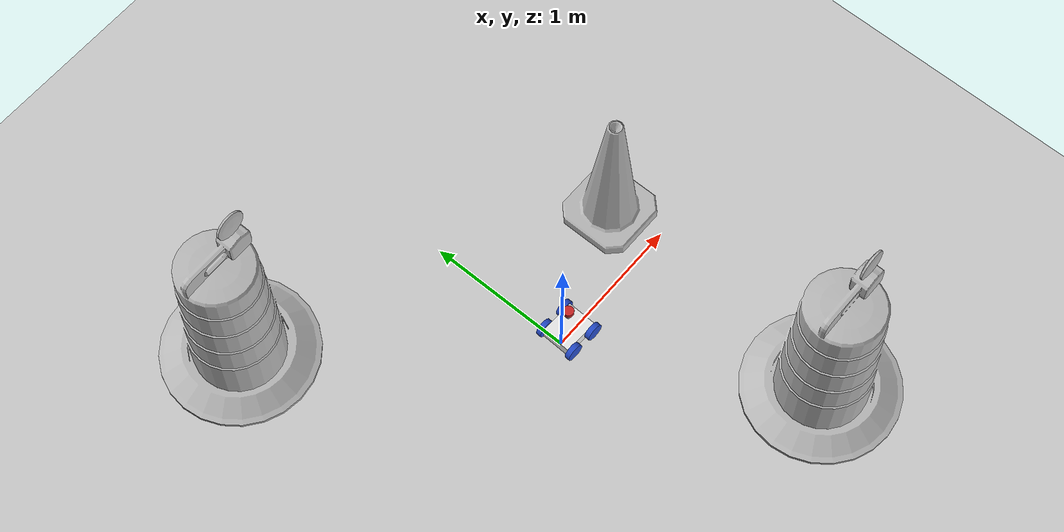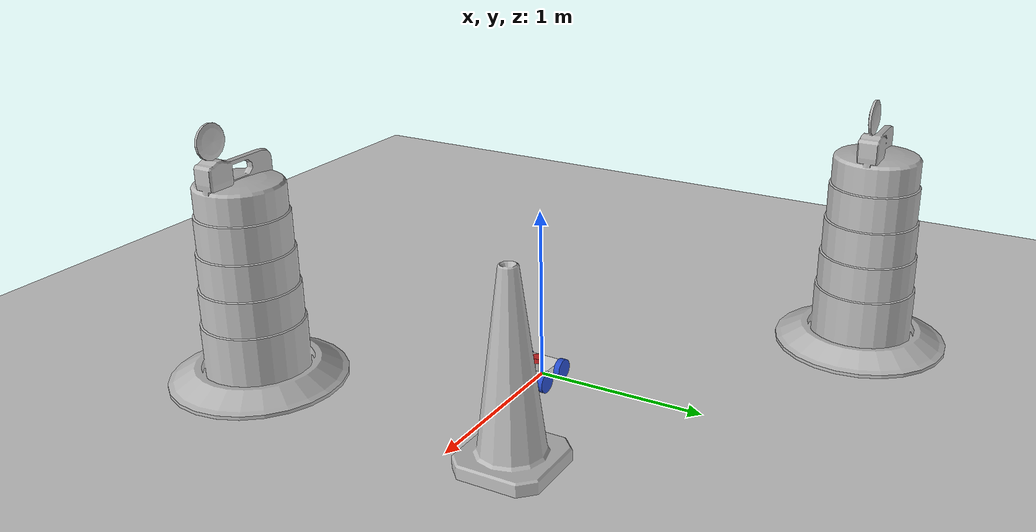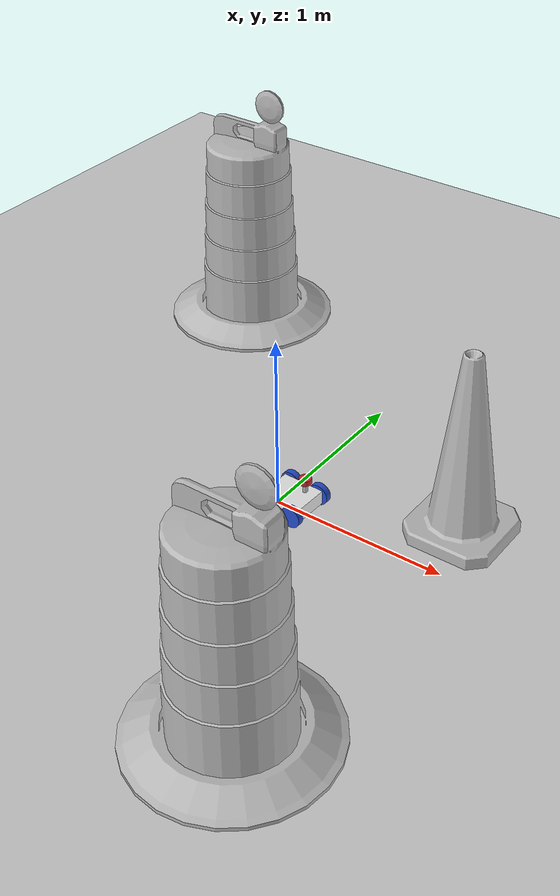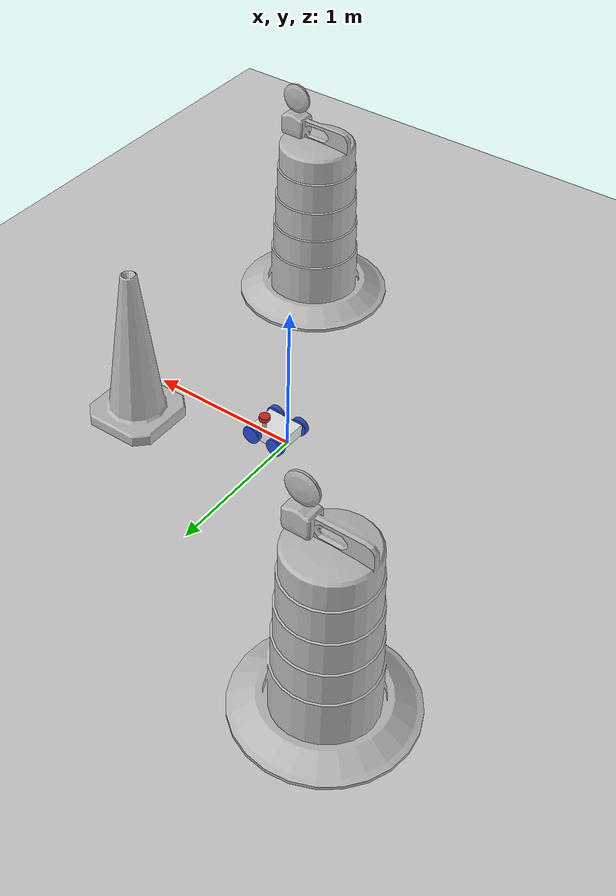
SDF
<sdf version="1.7">
 <world name="default">
  <light name="sun" type="directional">
   <pose>0 0 10 0 -0 0</pose>
   <diffuse>0.8 0.8 0.8 1</diffuse>
   <specular>0.2 0.2 0.2 1</specular>
   <attenuation>
    <range>1000</range>
    <constant>0.9</constant>
    <linear>0.01</linear>
    <quadratic>0.001</quadratic>
   </attenuation>
   <direction>-0.5 0.1 -0.9</direction>
   <spot><inner_angle>0</inner_angle><outer_angle>0</outer_angle><falloff>0</falloff></spot>
  </light>
  <model name="ground_plane">
   <static>1</static>
   <link name="link">
    <collision name="collision">
     <geometry><plane><normal>0 0 1</normal><size>100 100</size></plane></geometry>
     <surface>
      <contact><collide_bitmask>65535</collide_bitmask></contact>
      <friction><ode><mu>100</mu><mu2>50</mu2></ode></friction>
     </surface>
    </collision>
    <visual name="visual">
     <cast_shadows>0</cast_shadows>
     <geometry><plane><normal>0 0 1</normal><size>100 100</size></plane></geometry>
     <material>
      <script><uri>file://media/materials/scripts/gazebo.material</uri><name>Gazebo/Grey</name></script>
     </material>
    </visual>
   </link>
  </model>
  <gravity>0 0 -9.8</gravity>
  <magnetic_field>6e-06 2.3e-05 -4.2e-05</magnetic_field>
  <atmosphere type="adiabatic"/>
  <physics type="ode">
   <max_step_size>0.001</max_step_size>
   <real_time_factor>1</real_time_factor>
   <real_time_update_rate>1000</real_time_update_rate>
  </physics>
  <scene><ambient>0.4 0.4 0.4 1</ambient><background>0.7 0.7 0.7 1</background><shadows>1</shadows></scene>
  <audio><device>default</device></audio>
  <spherical_coordinates>
   <surface_model>EARTH_WGS84</surface_model>
   <latitude_deg>0</latitude_deg>
   <longitude_deg>0</longitude_deg>
   <elevation>0</elevation>
   <heading_deg>0</heading_deg>
  </spherical_coordinates>
  <model name="my_bot">
   <link name="base_link">
    <inertial>
     <pose>0.018182 0.018182 0.092598 0 -0 0</pose>
     <mass>1.1</mass>
     <inertia>
      <ixx>0.00573095</ixx>
      <ixy>-0.000636364</ixy>
      <ixz>-0.00112955</ixz>
      <iyy>0.00689996</iyy>
      <iyz>-0.00112955</iyz>
      <izz>0.00737144</izz>
     </inertia>
    </inertial>
    <collision name="base_link_fixed_joint_lump__chassis_collision">
     <pose>0 0 0.060325 0 -0 0</pose>
     <geometry><box><size>0.24765 0.2032 0.08</size></box></geometry>
    </collision>
    <collision name="base_link_fixed_joint_lump__laser_base_collision_1">
     <pose>0.05 0.05 0.127825 0 -0 0</pose>
     <geometry><cylinder><length>0.055</length><radius>0.015</radius></cylinder></geometry>
    </collision>
    <collision name="base_link_fixed_joint_lump__laser_frame_collision_2">
     <pose>0.05 0.05 0.170325 0 -0 0</pose>
     <geometry><cylinder><length>0.03</length><radius>0.035</radius></cylinder></geometry>
    </collision>
    <visual name="base_link_fixed_joint_lump__chassis_visual">
     <pose>0 0 0.060325 0 -0 0</pose>
     <geometry><box><size>0.24765 0.2032 0.08</size></box></geometry>
     <material>
      <script><name>Gazebo/White</name><uri>file://media/materials/scripts/gazebo.material</uri></script>
     </material>
    </visual>
    <visual name="base_link_fixed_joint_lump__laser_base_visual_1">
     <pose>0.05 0.05 0.127825 0 -0 0</pose>
     <geometry><cylinder><length>0.055</length><radius>0.015</radius></cylinder></geometry>
    </visual>
    <visual name="base_link_fixed_joint_lump__laser_frame_visual_2">
     <pose>0.05 0.05 0.170325 0 -0 0</pose>
     <geometry><cylinder><length>0.03</length><radius>0.035</radius></cylinder></geometry>
     <material>
      <script><name>Gazebo/Red</name><uri>file://media/materials/scripts/gazebo.material</uri></script>
     </material>
    </visual>
    <sensor name="laser" type="ray">
     <visualize>1</visualize>
     <update_rate>10</update_rate>
     <ray>
      <scan>
       <horizontal>
        <samples>360</samples>
        <min_angle>-3.14</min_angle>
        <max_angle>3.14</max_angle>
        <resolution>1</resolution>
       </horizontal>
       <vertical><samples>1</samples><min_angle>0</min_angle><max_angle>0</max_angle></vertical>
      </scan>
      <range><min>0.3</min><max>12</max></range>
     </ray>
     <plugin name="laser_controller" filename="libgazebo_ros_ray_sensor.so">
      <ros><argument>~/out:=scan</argument></ros>
      <output_type>sensor_msgs/LaserScan</output_type>
      <frame_name>laser_frame</frame_name>
     </plugin>
     <pose>0.05 0.05 0.170325 0 -0 0</pose>
    </sensor>
   </link>
   <joint name="back_left_wheel_joint" type="revolute">
    <pose relative_to="base_link">-0.092075 0.119063 0.060325 0 -0 0</pose>
    <parent>base_link</parent>
    <child>back_left_wheel</child>
    <axis>
     <xyz>0 1 0</xyz>
     <limit><lower>-1e+16</lower><upper>1e+16</upper></limit>
     <dynamics><spring_reference>0</spring_reference><spring_stiffness>0</spring_stiffness></dynamics>
    </axis>
   </joint>
   <link name="back_left_wheel">
    <pose relative_to="back_left_wheel_joint">0 0 0 0 -0 0</pose>
    <inertial>
     <pose>0 0 0 1.5708 -0 0</pose>
     <mass>0.2</mass>
     <inertia>
      <ixx>0.000202285</ixx>
      <ixy>0</ixy>
      <ixz>0</ixz>
      <iyy>0.000202285</iyy>
      <iyz>0</iyz>
      <izz>0.000363911</izz>
     </inertia>
    </inertial>
    <collision name="back_left_wheel_collision">
     <pose>0 0 0 1.5708 -0 0</pose>
     <geometry><cylinder><length>0.034925</length><radius>0.060325</radius></cylinder></geometry>
    </collision>
    <visual name="back_left_wheel_visual">
     <pose>0 0 0 1.5708 -0 0</pose>
     <geometry><cylinder><length>0.034925</length><radius>0.060325</radius></cylinder></geometry>
     <material>
      <script><name>Gazebo/Blue</name><uri>file://media/materials/scripts/gazebo.material</uri></script>
     </material>
    </visual>
   </link>
   <joint name="back_right_wheel_joint" type="revolute">
    <pose relative_to="base_link">-0.092075 -0.119063 0.060325 0 -0 0</pose>
    <parent>base_link</parent>
    <child>back_right_wheel</child>
    <axis>
     <xyz>0 1 0</xyz>
     <limit><lower>-1e+16</lower><upper>1e+16</upper></limit>
     <dynamics><spring_reference>0</spring_reference><spring_stiffness>0</spring_stiffness></dynamics>
    </axis>
   </joint>
   <link name="back_right_wheel">
    <pose relative_to="back_right_wheel_joint">0 0 0 0 -0 0</pose>
    <inertial>
     <pose>0 0 0 1.5708 -0 0</pose>
     <mass>0.2</mass>
     <inertia>
      <ixx>0.000202285</ixx>
      <ixy>0</ixy>
      <ixz>0</ixz>
      <iyy>0.000202285</iyy>
      <iyz>0</iyz>
      <izz>0.000363911</izz>
     </inertia>
    </inertial>
    <collision name="back_right_wheel_collision">
     <pose>0 0 0 1.5708 -0 0</pose>
     <geometry><cylinder><length>0.034925</length><radius>0.060325</radius></cylinder></geometry>
    </collision>
    <visual name="back_right_wheel_visual">
     <pose>0 0 0 1.5708 -0 0</pose>
     <geometry><cylinder><length>0.034925</length><radius>0.060325</radius></cylinder></geometry>
     <material>
      <script><name>Gazebo/Blue</name><uri>file://media/materials/scripts/gazebo.material</uri></script>
     </material>
    </visual>
   </link>
   <joint name="front_left_wheel_joint" type="revolute">
    <pose relative_to="base_link">0.092075 0.119063 0.060325 0 -0 0</pose>
    <parent>base_link</parent>
    <child>front_left_wheel</child>
    <axis>
     <xyz>0 1 0</xyz>
     <limit><lower>-1e+16</lower><upper>1e+16</upper></limit>
     <dynamics><spring_reference>0</spring_reference><spring_stiffness>0</spring_stiffness></dynamics>
    </axis>
   </joint>
   <link name="front_left_wheel">
    <pose relative_to="front_left_wheel_joint">0 0 0 0 -0 0</pose>
    <inertial>
     <pose>0 0 0 1.5708 -0 0</pose>
     <mass>0.2</mass>
     <inertia>
      <ixx>0.000202285</ixx>
      <ixy>0</ixy>
      <ixz>0</ixz>
      <iyy>0.000202285</iyy>
      <iyz>0</iyz>
      <izz>0.000363911</izz>
     </inertia>
    </inertial>
    <collision name="front_left_wheel_collision">
     <pose>0 0 0 1.5708 -0 0</pose>
     <geometry><cylinder><length>0.034925</length><radius>0.060325</radius></cylinder></geometry>
    </collision>
    <visual name="front_left_wheel_visual">
     <pose>0 0 0 1.5708 -0 0</pose>
     <geometry><cylinder><length>0.034925</length><radius>0.060325</radius></cylinder></geometry>
     <material>
      <script><name>Gazebo/Blue</name><uri>file://media/materials/scripts/gazebo.material</uri></script>
     </material>
    </visual>
   </link>
   <joint name="front_right_wheel_joint" type="revolute">
    <pose relative_to="base_link">0.092075 -0.119063 0.060325 0 -0 0</pose>
    <parent>base_link</parent>
    <child>front_right_wheel</child>
    <axis>
     <xyz>0 1 0</xyz>
     <limit><lower>-1e+16</lower><upper>1e+16</upper></limit>
     <dynamics><spring_reference>0</spring_reference><spring_stiffness>0</spring_stiffness></dynamics>
    </axis>
   </joint>
   <link name="front_right_wheel">
    <pose relative_to="front_right_wheel_joint">0 0 0 0 -0 0</pose>
    <inertial>
     <pose>0 0 0 1.5708 -0 0</pose>
     <mass>0.2</mass>
     <inertia>
      <ixx>0.000202285</ixx>
      <ixy>0</ixy>
      <ixz>0</ixz>
      <iyy>0.000202285</iyy>
      <iyz>0</iyz>
      <izz>0.000363911</izz>
     </inertia>
    </inertial>
    <collision name="front_right_wheel_collision">
     <pose>0 0 0 1.5708 -0 0</pose>
     <geometry><cylinder><length>0.034925</length><radius>0.060325</radius></cylinder></geometry>
    </collision>
    <visual name="front_right_wheel_visual">
     <pose>0 0 0 1.5708 -0 0</pose>
     <geometry><cylinder><length>0.034925</length><radius>0.060325</radius></cylinder></geometry>
     <material>
      <script><name>Gazebo/Blue</name><uri>file://media/materials/scripts/gazebo.material</uri></script>
     </material>
    </visual>
   </link>
   <static>0</static>
   <plugin name="diff_drive" filename="libgazebo_ros_diff_drive.so">
    <num_wheel_pairs>2</num_wheel_pairs>
    <left_joint>front_left_wheel_joint</left_joint>
    <right_joint>front_right_wheel_joint</right_joint>
    <left_joint>back_left_wheel_joint</left_joint>
    <right_joint>back_right_wheel_joint</right_joint>
    <wheel_separation>0.238125</wheel_separation>
    <wheel_separation>0.238125</wheel_separation>
    <wheel_diameter>0.12065</wheel_diameter>
    <wheel_diameter>0.12065</wheel_diameter>
    <max_wheel_torque>200</max_wheel_torque>
    <max_wheel_acceleration>10.0</max_wheel_acceleration>
    <odometry_frame>odom</odometry_frame>
    <robot_base_frame>base_link</robot_base_frame>
    <publish_odom>1</publish_odom>
    <publish_odom_tf>1</publish_odom_tf>
    <publish_wheel_tf>1</publish_wheel_tf>
   </plugin>
   <pose>0.085605 0.006035 0 -0 -0 -0.034981</pose>
  </model>
  <model name="Construction Barrel">
   <link name="link">
    <inertial>
     <pose>0 0 0.4 0 -0 0</pose>
     <mass>500</mass>
     <inertia><ixx>51.2096</ixx><iyy>51.2096</iyy><izz>25</izz><ixy>0</ixy><ixz>0</ixz><iyz>0</iyz></inertia>
    </inertial>
    <collision name="collision">
     <geometry><mesh><uri>model://construction_barrel/meshes/construction_barrel.dae</uri></mesh></geometry>
    </collision>
    <visual name="visual">
     <geometry><mesh><uri>model://construction_barrel/meshes/construction_barrel.dae</uri></mesh></geometry>
    </visual>
   </link>
   <pose>0.805661 -1.41664 1e-06 2e-06 3e-06 -6e-06</pose>
  </model>
  <model name="Construction Cone">
   <link name="link">
    <collision name="collision">
     <geometry>
      <mesh><scale>10 10 10</scale><uri>model://construction_cone/meshes/construction_cone.dae</uri></mesh>
     </geometry>
    </collision>
    <visual name="visual">
     <geometry>
      <mesh><scale>10 10 10</scale><uri>model://construction_cone/meshes/construction_cone.dae</uri></mesh>
     </geometry>
    </visual>
    <inertial>
     <inertia><ixx>1</ixx><ixy>0</ixy><ixz>0</ixz><iyy>1</iyy><iyz>0</iyz><izz>1</izz></inertia>
     <mass>1</mass>
    </inertial>
   </link>
   <pose>0.915665 0.353063 -0 0 -0 0</pose>
  </model>
  <model name="Construction Barrel_0">
   <link name="link">
    <inertial>
     <pose>0 0 0.4 0 -0 0</pose>
     <mass>500</mass>
     <inertia><ixx>51.2096</ixx><iyy>51.2096</iyy><izz>25</izz><ixy>0</ixy><ixz>0</ixz><iyz>0</iyz></inertia>
    </inertial>
    <collision name="collision">
     <geometry><mesh><uri>model://construction_barrel/meshes/construction_barrel.dae</uri></mesh></geometry>
    </collision>
    <visual name="visual">
     <geometry><mesh><uri>model://construction_barrel/meshes/construction_barrel.dae</uri></mesh></geometry>
    </visual>
   </link>
   <pose>-1.32007 1.49464 -1e-06 3e-06 -2e-06 -2e-06</pose>
  </model>
 </world>
</sdf>
